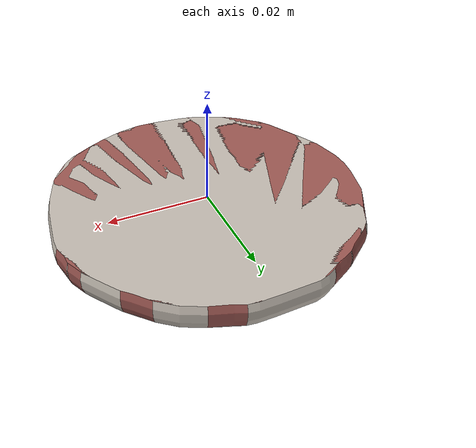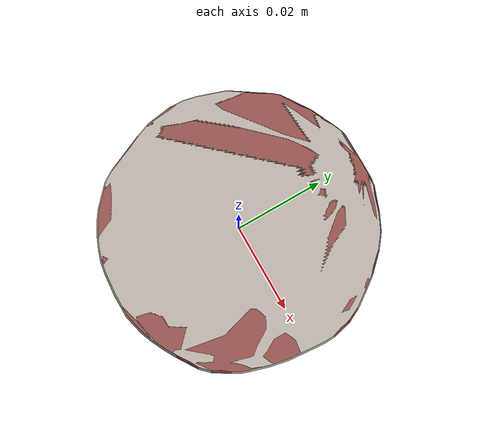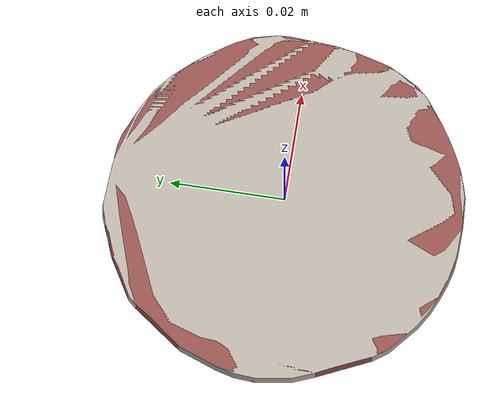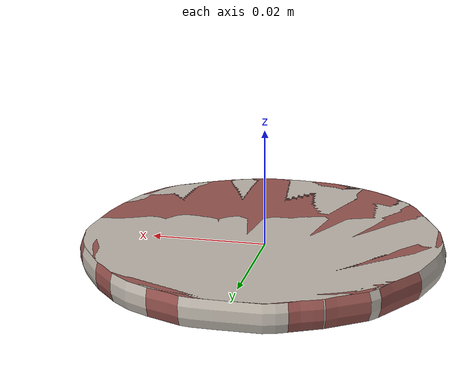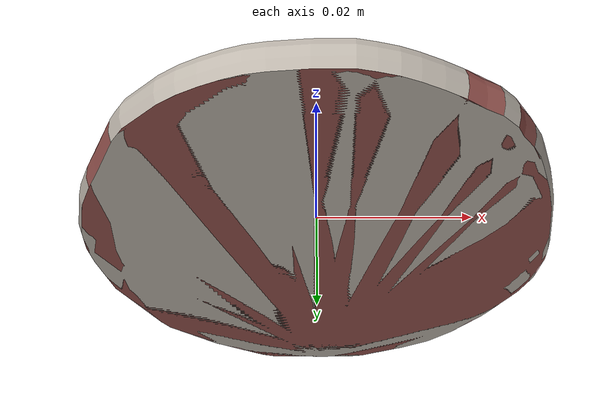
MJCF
<mujoco model="model">
  <compiler angle="radian"/>
  <asset>
    <mesh file="visual/TomatoSlice001.obj" name="TomatoSlice001_vis"/>
    <texture file="visual/T_BC001.png" name="TomatoSlice001_material" type="2d"/>
    <material name="TomatoSlice001_material" rgba="1 1 1 1.0" texture="TomatoSlice001_material" shininess="0.16" specular="0.22"/>
    <mesh file="collision/collision_mesh_collision_0.obj" name="TomatoSlice001_collision_mesh_0"/>
  </asset>
  <default>
    <default class="visual">
      <geom conaffinity="0" contype="0" group="1" type="mesh"/>
    </default>
    <default class="collision">
      <geom group="0" rgba="0.5 0 0 0.5"/>
    </default>
    <default class="spawn">
      <geom group="0" rgba="1 1 1 0.5" contype="0" conaffinity="0"/>
      <site group="0" rgba="1 1 1 0.5"/>
    </default>
    <default class="region">
      <geom group="1" conaffinity="0" contype="0" rgba="0 1 0 0" mass="0"/>
    </default>
  </default>
  <worldbody>
    <body>
      <body name="object">
        <geom mesh="TomatoSlice001_vis" type="mesh" solimp="0.998 0.998 0.001" solref="0.001 1" density="100" friction="0.95 0.3 0.1" class="visual" material="TomatoSlice001_material"/>
        <geom class="region" name="reg_bbox" type="box" pos="0.0 0.0 0.0" size="0.03057 0.03033606 0.002368"/>
        <geom mesh="TomatoSlice001_collision_mesh_0" type="mesh" class="collision"/>
      </body>
    </body>
  </worldbody>
  <actuator/>
  <custom><text name="material_gt" data="tomato"/></custom>
</mujoco>
